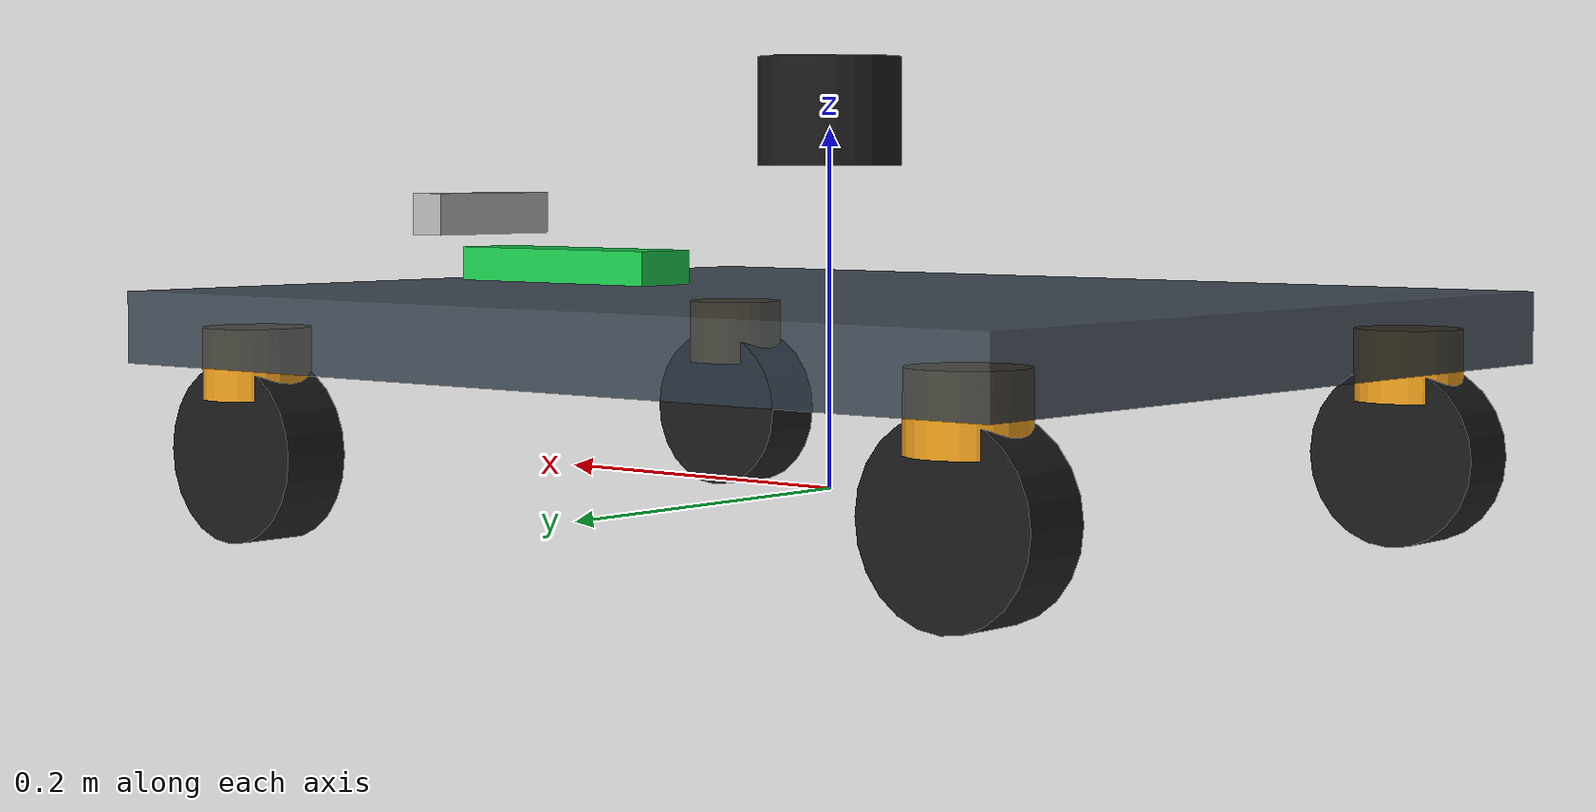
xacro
<?xml version="1.0"?>
<robot name="swerve_robot" xmlns:xacro="http://www.ros.org/wiki/xacro">

  <!-- Arguments -->
  <xacro:arg name="use_gazebo" default="false"/>
  <xacro:arg name="controller_yaml" default=""/>

  <!-- Constants -->
  <xacro:property name="wheelbase" value="0.50"/>
  <xacro:property name="trackwidth" value="0.40"/>
  <xacro:property name="wheel_radius" value="0.05"/>
  <xacro:property name="wheel_width" value="0.04"/>

  <!-- Materials -->
  <material name="chassis_mat">
    <color rgba="0.2 0.25 0.3 0.85"/>
  </material>
  <material name="arrow_mat">
    <color rgba="0.1 0.8 0.3 1.0"/>
  </material>
  <material name="axle_mat">
    <color rgba="0.9 0.6 0.1 1.0"/>
  </material>
  <material name="wheel_mat">
    <color rgba="0.1 0.1 0.1 1.0"/>
  </material>
  <material name="sensor_mat">
    <color rgba="0.1 0.1 0.1 1.0"/>
  </material>
  <material name="realsense_mat">
    <color rgba="0.7 0.7 0.7 1.0"/>
  </material>

  <!-- base_footprint -->
  <link name="base_footprint"/>

  <joint name="base_footprint_joint" type="fixed">
    <parent link="base_footprint"/>
    <child link="base_link"/>
    <origin xyz="0 0 ${wheel_radius + 0.04}" rpy="0 0 0"/>
  </joint>

  <!-- base_link (Chassis) -->
  <link name="base_link">
    <visual>
      <origin xyz="0 0 0" rpy="0 0 0"/>
      <geometry>
        <box size="0.60 0.50 0.04"/>
      </geometry>
      <material name="chassis_mat"/>
    </visual>
    <!-- Forward Direction Pointer Arrow -->
    <visual>
      <origin xyz="0.20 0 0.03" rpy="0 0 0"/>
      <geometry>
        <box size="0.15 0.04 0.02"/>
      </geometry>
      <material name="arrow_mat"/>
    </visual>
    <collision>
      <geometry>
        <box size="0.60 0.50 0.04"/>
      </geometry>
    </collision>
    <inertial>
      <mass value="15.0"/>
      <origin xyz="0 0 0"/>
      <inertia ixx="0.3" ixy="0" ixz="0" iyy="0.4" iyz="0" izz="0.6"/>
    </inertial>
  </link>

  <!-- ==================== Sensors ==================== -->
  <!-- 1. RealSense D435 RGB-D Camera -->
  <link name="camera_link">
    <visual>
      <origin xyz="0 0 0" rpy="0 0 0"/>
      <geometry>
        <box size="0.025 0.09 0.025"/>
      </geometry>
      <material name="realsense_mat"/>
    </visual>
    <collision>
      <geometry>
        <box size="0.025 0.09 0.025"/>
      </geometry>
    </collision>
    <inertial>
      <mass value="0.072"/>
      <origin xyz="0 0 0"/>
      <inertia ixx="0.0001" ixy="0" ixz="0" iyy="0.0001" iyz="0" izz="0.0001"/>
    </inertial>
  </link>

  <joint name="camera_joint" type="fixed">
    <parent link="base_link"/>
    <child link="camera_link"/>
    <origin xyz="0.28 0 0.06" rpy="0 0 0"/>
  </joint>

  <!-- Camera Optical Frame (REP-103) -->
  <link name="camera_optical_frame"/>
  <joint name="camera_optical_joint" type="fixed">
    <parent link="camera_link"/>
    <child link="camera_optical_frame"/>
    <origin xyz="0 0 0" rpy="${-pi/2} 0 ${-pi/2}"/>
  </joint>

  <!-- 2. 3D LiDAR (e.g. Mid-360 / 16-channel 3D LiDAR) -->
  <link name="lidar_link">
    <visual>
      <origin xyz="0 0 0" rpy="0 0 0"/>
      <geometry>
        <cylinder radius="0.04" length="0.06"/>
      </geometry>
      <material name="sensor_mat"/>
    </visual>
    <collision>
      <geometry>
        <cylinder radius="0.04" length="0.06"/>
      </geometry>
    </collision>
    <inertial>
      <mass value="0.25"/>
      <origin xyz="0 0 0"/>
      <inertia ixx="0.0002" ixy="0" ixz="0" iyy="0.0002" iyz="0" izz="0.0002"/>
    </inertial>
  </link>

  <joint name="lidar_joint" type="fixed">
    <parent link="base_link"/>
    <child link="lidar_link"/>
    <origin xyz="0.0 0 0.12" rpy="0 0 0"/>
  </joint>

  <!-- Macro for Swerve Module -->
  <xacro:macro name="swerve_module" params="prefix x_pos y_pos">
    <!-- Steering Axle Link -->
    <link name="${prefix}_axle_link">
      <visual>
        <origin xyz="0 0 0" rpy="0 0 0"/>
        <geometry>
          <cylinder radius="0.03" length="0.04"/>
        </geometry>
        <material name="axle_mat"/>
      </visual>
      <inertial>
        <mass value="0.5"/>
        <origin xyz="0 0 0"/>
        <inertia ixx="0.001" ixy="0" ixz="0" iyy="0.001" iyz="0" izz="0.001"/>
      </inertial>
    </link>

    <!-- Steering Joint (Rotates around Z, continuous infinite rotation) -->
    <joint name="${prefix}_axle_joint" type="continuous">
      <parent link="base_link"/>
      <child link="${prefix}_axle_link"/>
      <origin xyz="${x_pos} ${y_pos} -0.02" rpy="0 0 0"/>
      <axis xyz="0 0 1"/>
      <limit effort="100.0" velocity="100.0"/>
    </joint>

    <!-- Wheel Link -->
    <link name="${prefix}_wheel_link">
      <visual>
        <origin xyz="0 0 0" rpy="${pi/2} 0 0"/>
        <geometry>
          <cylinder radius="${wheel_radius}" length="${wheel_width}"/>
        </geometry>
        <material name="wheel_mat"/>
      </visual>
      <collision>
        <origin xyz="0 0 0" rpy="${pi/2} 0 0"/>
        <geometry>
          <cylinder radius="${wheel_radius}" length="${wheel_width}"/>
        </geometry>
      </collision>
      <inertial>
        <mass value="1.0"/>
        <origin xyz="0 0 0"/>
        <inertia ixx="0.002" ixy="0" ixz="0" iyy="0.003" iyz="0" izz="0.002"/>
      </inertial>
    </link>

    <!-- Drive Wheel Joint (Rotates around Y) -->
    <joint name="${prefix}_wheel_joint" type="continuous">
      <parent link="${prefix}_axle_link"/>
      <child link="${prefix}_wheel_link"/>
      <origin xyz="0 0 -${wheel_radius}" rpy="0 0 0"/>
      <axis xyz="0 1 0"/>
    </joint>

    <!-- Gazebo physics properties for wheel -->
    <gazebo reference="${prefix}_wheel_link">
      <mu1>1.2</mu1>
      <mu2>1.2</mu2>
      <kp>1000000.0</kp>
      <kd>100.0</kd>
    </gazebo>
  </xacro:macro>

  <!-- Instantiate 4 Modules -->
  <!-- Front Left -->
  <xacro:swerve_module prefix="fl" x_pos="${wheelbase/2.0}" y_pos="${trackwidth/2.0}"/>
  <!-- Front Right -->
  <xacro:swerve_module prefix="fr" x_pos="${wheelbase/2.0}" y_pos="-${trackwidth/2.0}"/>
  <!-- Rear Left -->
  <xacro:swerve_module prefix="rl" x_pos="-${wheelbase/2.0}" y_pos="${trackwidth/2.0}"/>
  <!-- Rear Right -->
  <xacro:swerve_module prefix="rr" x_pos="-${wheelbase/2.0}" y_pos="-${trackwidth/2.0}"/>

  <!-- Gazebo Sensors & Plugins -->
  <xacro:if value="$(arg use_gazebo)">
    <gazebo>
      <plugin filename="gz_ros2_control-system" name="gz_ros2_control::GazeboSimROS2ControlPlugin">
        <xacro:if value="${'$(arg controller_yaml)' != ''}">
          <parameters>$(arg controller_yaml)</parameters>
        </xacro:if>
      </plugin>
    </gazebo>

    <!-- RealSense D435 RGB Camera (Optimized 10Hz, 480x360) -->
    <gazebo reference="camera_link">
      <sensor name="realsense" type="camera">
        <camera>
          <horizontal_fov>1.204</horizontal_fov>
          <image>
            <width>480</width>
            <height>360</height>
            <format>R8G8B8</format>
          </image>
          <clip>
            <near>0.1</near>
            <far>20.0</far>
          </clip>
        </camera>
        <always_on>1</always_on>
        <update_rate>10</update_rate>
        <visualize>false</visualize>
        <topic>camera/color/image_raw</topic>
        <camera_info_topic>camera/color/camera_info</camera_info_topic>
        <gz_frame_id>camera_optical_frame</gz_frame_id>
      </sensor>
    </gazebo>

    <!-- 3D LiDAR Sensor (Optimized 10Hz, 360x16 channels) -->
    <gazebo reference="lidar_link">
      <sensor name="lidar3d" type="gpu_lidar">
        <ray>
          <scan>
            <horizontal>
              <samples>360</samples>
              <resolution>1</resolution>
              <min_angle>-3.141592653589793</min_angle>
              <max_angle>3.141592653589793</max_angle>
            </horizontal>
            <vertical>
              <samples>16</samples>
              <resolution>1</resolution>
              <min_angle>-0.2617993877991494</min_angle>
              <max_angle>0.2617993877991494</max_angle>
            </vertical>
          </scan>
          <range>
            <min>0.1</min>
            <max>30.0</max>
            <resolution>0.02</resolution>
          </range>
        </ray>
        <always_on>1</always_on>
        <update_rate>10</update_rate>
        <visualize>false</visualize>
        <topic>lidar3d</topic>
        <gz_frame_id>lidar_link</gz_frame_id>
      </sensor>
    </gazebo>
  </xacro:if>

  <!-- ros2_control description -->
  <ros2_control name="SwerveSystem" type="system">
    <hardware>
      <xacro:if value="$(arg use_gazebo)">
        <plugin>gz_ros2_control/GazeboSimSystem</plugin>
      </xacro:if>
      <xacro:unless value="$(arg use_gazebo)">
        <plugin>mock_components/GenericSystem</plugin>
        <param name="calculate_dynamics">true</param>
      </xacro:unless>
    </hardware>

    <!-- Front Left -->
    <joint name="fl_axle_joint">
      <command_interface name="position"/>
      <state_interface name="position"><param name="initial_value">0.0</param></state_interface>
    </joint>
    <joint name="fl_wheel_joint">
      <command_interface name="velocity"/>
      <state_interface name="velocity"><param name="initial_value">0.0</param></state_interface>
      <state_interface name="position"><param name="initial_value">0.0</param></state_interface>
    </joint>

    <!-- Front Right -->
    <joint name="fr_axle_joint">
      <command_interface name="position"/>
      <state_interface name="position"><param name="initial_value">0.0</param></state_interface>
    </joint>
    <joint name="fr_wheel_joint">
      <command_interface name="velocity"/>
      <state_interface name="velocity"><param name="initial_value">0.0</param></state_interface>
      <state_interface name="position"><param name="initial_value">0.0</param></state_interface>
    </joint>

    <!-- Rear Left -->
    <joint name="rl_axle_joint">
      <command_interface name="position"/>
      <state_interface name="position"><param name="initial_value">0.0</param></state_interface>
    </joint>
    <joint name="rl_wheel_joint">
      <command_interface name="velocity"/>
      <state_interface name="velocity"><param name="initial_value">0.0</param></state_interface>
      <state_interface name="position"><param name="initial_value">0.0</param></state_interface>
    </joint>

    <!-- Rear Right -->
    <joint name="rr_axle_joint">
      <command_interface name="position"/>
      <state_interface name="position"><param name="initial_value">0.0</param></state_interface>
    </joint>
    <joint name="rr_wheel_joint">
      <command_interface name="velocity"/>
      <state_interface name="velocity"><param name="initial_value">0.0</param></state_interface>
      <state_interface name="position"><param name="initial_value">0.0</param></state_interface>
    </joint>
  </ros2_control>

</robot>
